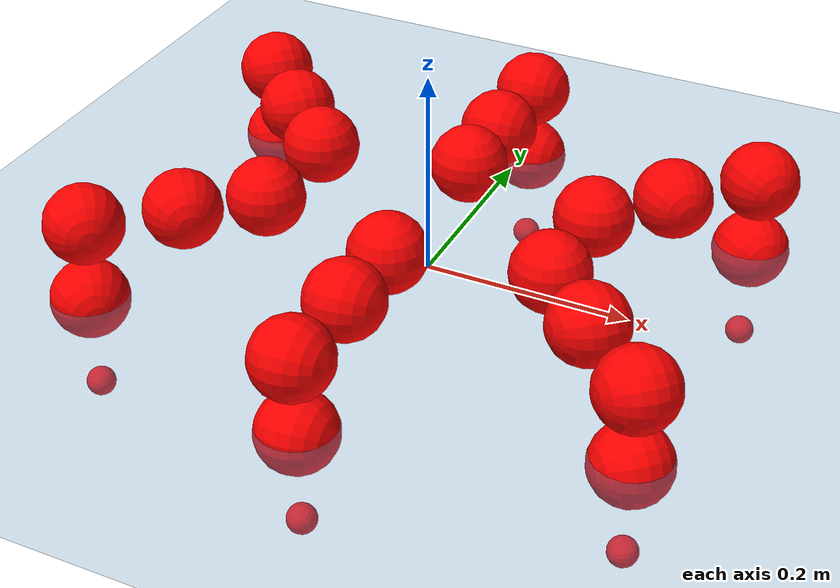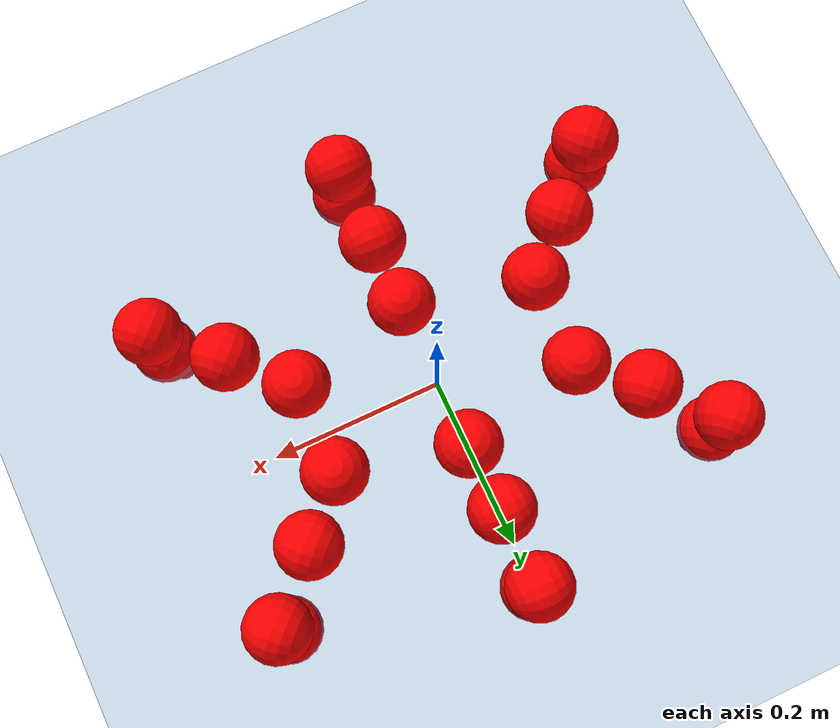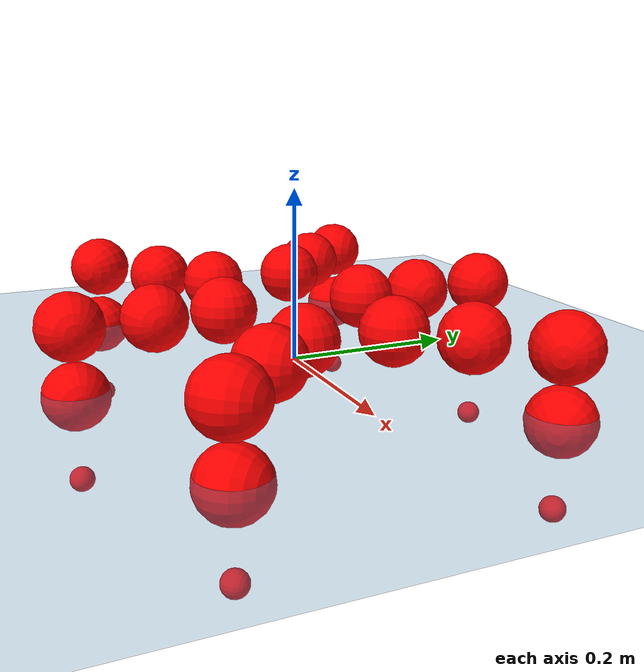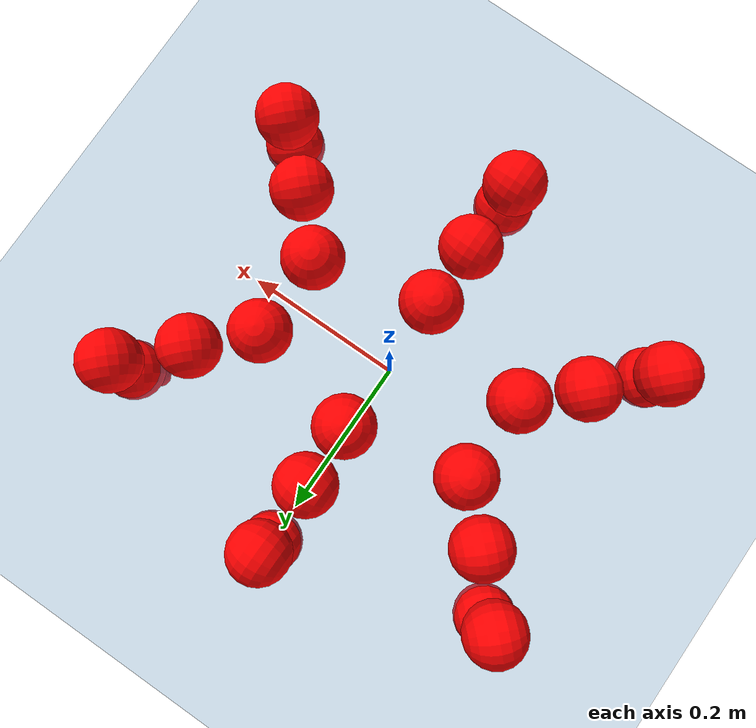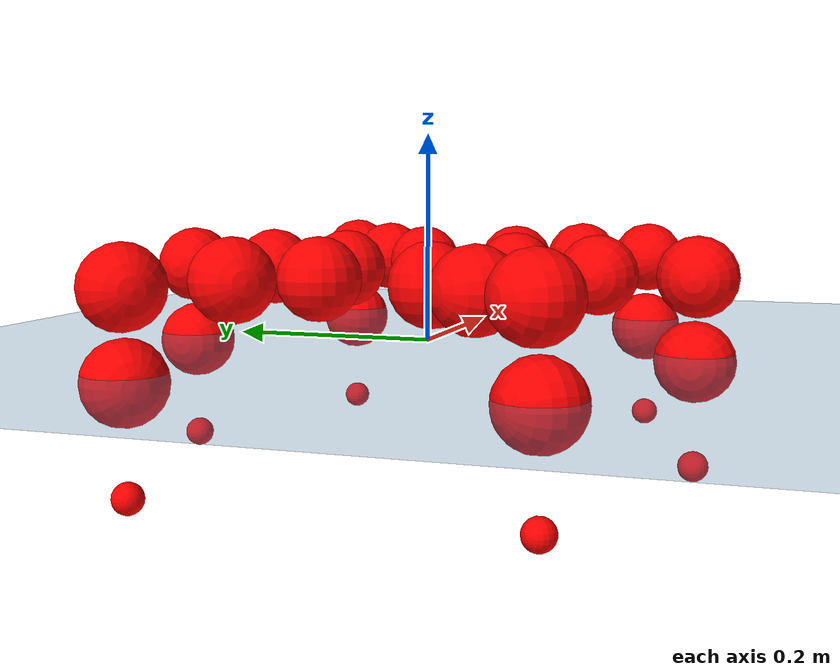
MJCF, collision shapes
<mujoco model="Golem">
  <compiler angle="radian" assetdir="assets" balanceinertia="true" inertiafromgeom="false"/>

  <option timestep="0.005" density="1.2" viscosity="2e-05"/>

  <size nkey="1"/>

  <visual>
    <quality shadowsize="8192"/>
    <map shadowclip="0.5"/>
  </visual>

  <default>
    <default class="/">
      <joint armature="0.01" damping="0.01" frictionloss="0.01"/>
      <geom contype="0" conaffinity="0" group="1" solref="-1000 -80"/>
      <site size="0.01 0.005 0.005" group="5"/>
      <general forcelimited="true" biastype="affine" gainprm="25" biasprm="0 -25 -0.5"/>
      <default class="visual">
        <geom type="mesh" group="2"/>
      </default>
      <default class="collision">
        <geom group="3"/>
      </default>
      <default class="foot">
        <geom size="0.01 0 0" condim="6" group="4" priority="1" solimp="0.015 1 0.01"/>
      </default>
      <default class="reward_collision_sphere">
        <geom group="5" rgba="1 0 0 1"/>
      </default>
    </default>
  </default>

  <asset>
    <texture type="skybox" colorspace="auto" name="//unnamed_texture_0" builtin="gradient" rgb1="0.95 0.95 0.95" rgb2="0.95 0.95 0.95" width="100" height="600"/>
    <texture type="2d" colorspace="auto" name="texplane" builtin="checker" rgb1="0.345 0.575 0.748" rgb2="0.345 0.575 0.748" markrgb="1 1 1" width="512" height="512"/>
    <material name="MatPlane" class="/" texture="texplane" texuniform="true" texrepeat="2 2" specular="0.9"/>
    <mesh name="body" class="/" file="body.stl" scale="0.001 0.001 0.001"/>
    <mesh name="coxa" class="/" file="coxa.stl" scale="0.001 0.001 0.001"/>
    <mesh name="femur" class="/" file="femur.stl" scale="0.001 0.001 0.001"/>
    <mesh name="tibia" class="/" file="tibia.stl" scale="0.001 0.001 0.001"/>
    <mesh name="tarsus" class="/" file="tarsus.stl" scale="0.001 0.001 0.001"/>
  </asset>

  <worldbody>
    <geom name="floor" class="/" size="100 100 0.125" type="plane" group="0" material="MatPlane"/>
    <light name="toplight_shadow" class="/" pos="0 0 5" dir="0.0990148 0.0990148 -0.990148" type="directional" ambient="0.04 0.04 0.04" diffuse="0.55 0.55 0.55" specular="0.12 0.12 0.12"/>
    <light name="toplight_fill" class="/" pos="0 0 5" dir="0.0990148 0.0990148 -0.990148" type="directional" castshadow="false" ambient="0.04 0.04 0.04" diffuse="0.3 0.3 0.3" specular="0.08 0.08 0.08"/>
    <body name="trunk" pos="-1.59044e-05 0.00103776 -0.00246855" quat="0.999999 -0.00115398 0.000465562 0.000641755">
      <inertial pos="0.00142989 -0.00136197 -0.00129216" quat="0.999999 -0.000663732 -0.000263985 0.00103831" mass="2.95519" diaginertia="0.00613319 0.00430112 0.0141938"/>
      <joint name="//unnamed_joint_0" type="free"/>
      <geom name="//unnamed_geom_1" class="/" pos="0 0 0.0686396" quat="1 0 0 0" type="mesh" rgba="0.9 0.9 0.9 1" mesh="body"/>
      <site name="imu" class="/" pos="0.119748 0.0140115 0.118567" size="0.00943926"/>
      <camera name="track" class="/" pos="0 -1.70331 0" quat="0.707107 0.707107 0 0" mode="trackcom"/>
      <camera name="ego_camera" class="/" pos="0.117992 0 0.107249" quat="-0.5 -0.5 0.5 0.5"/>
      <body name="coxa_RR" pos="-0.162795 -0.0707109 0.0706688" quat="0.383063 -0.000973188 3.83319e-05 -0.923722">
        <inertial pos="0.00273229 0.000220459 -0.00181972" quat="0.999981 -0.00209194 0.00238733 -0.00521788" mass="0.174679" diaginertia="0.00619005 0.00464889 0.014588"/>
        <joint name="coxa_joint_RR" class="/" pos="0 0 0" axis="0.000131494 -0.00213131 -0.999998" range="-3.11631 3.13717" armature="0.0088158" damping="0" frictionloss="0.00976812"/>
        <geom name="//unnamed_geom_2" class="/" type="mesh" rgba="0.2 0.2 0.2 1" mesh="coxa"/>
        <geom name="//unnamed_geom_3" class="reward_collision_sphere" size="0.037757" pos="-0.0272288 0 0"/>
        <body name="femur_RR" pos="0.0515938 -0.00118253 0.00172874" quat="0.500046 -0.500575 0.498957 0.500421">
          <inertial pos="-9.46052e-05 0.0023329 0.00192991" quat="0.999928 0.00390711 -0.0025949 0.0110579" mass="0.161284" diaginertia="0.00611287 0.00424714 0.0136983"/>
          <joint name="femur_joint_RR" class="/" pos="0 0 0" axis="-0.000884701 -0.00510682 -0.999987" range="-3.13501 3.1339" armature="0.0107172" damping="0.00590125" frictionloss="0.00948104"/>
          <geom name="//unnamed_geom_4" class="/" type="mesh" rgba="0.9 0.9 0.9 1" mesh="femur"/>
          <geom name="//unnamed_geom_5" class="reward_collision_sphere" size="0.037757"/>
          <body name="tibia_RR" pos="-0.00266324 -0.0908636 7.52467e-05" quat="1.85753e-05 1 -3.39441e-05 -3.4997e-05">
            <inertial pos="-0.000533726 0.00267904 -0.000963215" quat="1 8.29132e-06 2.14212e-05 6.15295e-06" mass="0.162123" diaginertia="0.00596288 0.00430194 0.0138355"/>
            <joint name="tibia_joint_RR" class="/" pos="0 0 0" axis="-0.0130282 0.00546896 0.9999" range="-3.08795 3.12243" armature="0.00836397" damping="0.00724825" frictionloss="0.0103994"/>
            <geom name="//unnamed_geom_6" class="/" type="mesh" rgba="0.2 0.2 0.2 1" mesh="tibia"/>
            <geom name="//unnamed_geom_7" class="reward_collision_sphere" size="0.037757"/>
            <body name="tarsus_RR" pos="0.0793399 0.00297465 -0.0022783" quat="0.999999 0.000348316 -0.000798908 0.000502391">
              <inertial pos="0.0562593 0.0013801 0.00270381" quat="0.498943 0.493829 0.501939 0.50522" mass="0.162113" diaginertia="0.00587222 0.00433622 0.0140557"/>
              <joint name="tarsus_joint_RR" class="/" pos="0 0 0" axis="0.0132535 -0.00311617 0.999907" range="-3.18013 3.15354" armature="0.00931142" damping="0.012781" frictionloss="0.00894211"/>
              <geom name="//unnamed_geom_8" class="/" type="mesh" rgba="0.9 0.9 0.9 1" mesh="tarsus"/>
              <geom name="foot_1" class="foot" size="0.00846289" pos="0.101654 0 0" quat="0 -0.707107 0 0.707107"/>
              <geom name="//unnamed_geom_10" class="reward_collision_sphere" size="0.037757"/>
              <geom name="//unnamed_geom_11" class="reward_collision_sphere" size="0.0141589" pos="0.09757 0 0"/>
              <site name="foot_1" class="foot" pos="0.101654 0 0" quat="0 -0.707107 0 0.707107" size="0.00943926"/>
            </body>
          </body>
        </body>
      </body>
      <body name="coxa_RM" pos="0.00196739 -0.115489 0.071213" quat="0.706812 2.17498e-05 4.97838e-05 -0.707402">
        <inertial pos="-0.00062612 -0.000265243 -0.00265512" quat="0.999935 0.0098582 -0.00231717 -0.00523302" mass="0.169209" diaginertia="0.00630433 0.00475229 0.0150894"/>
        <joint name="coxa_joint_RM" class="/" pos="0 0 0" axis="-0.00996677 0.00095461 -0.99995" range="-3.14452 3.10035" armature="0.00956698" damping="0.00967385" frictionloss="0.0106232"/>
        <geom name="//unnamed_geom_12" class="/" type="mesh" rgba="0.2 0.2 0.2 1" mesh="coxa"/>
        <geom name="//unnamed_geom_13" class="reward_collision_sphere" size="0.037757" pos="-0.0272288 0 0"/>
        <body name="femur_RM" pos="0.0520389 -0.00120098 -0.000984132" quat="0.500161 -0.5004 0.49967 0.499769">
          <inertial pos="0.000382048 0.00255663 0.000550232" quat="0.999986 -0.00291213 0.00286275 -0.00326383" mass="0.172158" diaginertia="0.00593915 0.00445908 0.0138825"/>
          <joint name="femur_joint_RM" class="/" pos="0 0 0" axis="0.000610592 0.00107754 -0.999999" range="-3.08413 3.1729" armature="0.0107379" damping="0.0166563" frictionloss="0.0107309"/>
          <geom name="//unnamed_geom_14" class="/" type="mesh" rgba="0.9 0.9 0.9 1" mesh="femur"/>
          <geom name="//unnamed_geom_15" class="reward_collision_sphere" size="0.037757"/>
          <body name="tibia_RM" pos="-0.000323421 -0.091592 5.53266e-06" quat="0.000438409 1 -0.000476224 0.000153087">
            <inertial pos="-0.000535063 0.000136628 0.00281092" quat="0.99999 0.000119646 0.000756182 0.00435482" mass="0.173969" diaginertia="0.00615158 0.00447123 0.0138997"/>
            <joint name="tibia_joint_RM" class="/" pos="0 0 0" axis="0.00750785 0.00860319 0.999935" range="-3.11894 3.19145" armature="0.0082404" damping="0.0186323" frictionloss="0.0106755"/>
            <geom name="//unnamed_geom_16" class="/" type="mesh" rgba="0.2 0.2 0.2 1" mesh="tibia"/>
            <geom name="//unnamed_geom_17" class="reward_collision_sphere" size="0.037757"/>
            <body name="tarsus_RM" pos="0.0777809 -0.00183846 -0.000273961" quat="0.999999 -0.00112529 0.000669814 -0.000274363">
              <inertial pos="0.0549792 -0.000621611 0.000694091" quat="0.499767 0.502088 0.498955 0.499185" mass="0.17976" diaginertia="0.00639088 0.00462743 0.0147083"/>
              <joint name="tarsus_joint_RM" class="/" pos="0 0 0" axis="-0.00406606 0.000595022 0.999992" range="-3.12606 3.15472" armature="0.00876144" damping="0.0153641" frictionloss="0.00914203"/>
              <geom name="//unnamed_geom_18" class="/" type="mesh" rgba="0.9 0.9 0.9 1" mesh="tarsus"/>
              <geom name="foot_2" class="foot" size="0.00858716" pos="0.101654 0 0" quat="0 -0.707107 0 0.707107"/>
              <geom name="//unnamed_geom_20" class="reward_collision_sphere" size="0.037757"/>
              <geom name="//unnamed_geom_21" class="reward_collision_sphere" size="0.0141589" pos="0.09757 0 0"/>
              <site name="foot_2" class="foot" pos="0.101654 0 0" quat="0 -0.707107 0 0.707107" size="0.00943926"/>
            </body>
          </body>
        </body>
      </body>
      <body name="coxa_RF" pos="0.162467 -0.0727859 0.0709252" quat="0.923904 -0.00028579 7.7298e-05 -0.382625">
        <inertial pos="-0.00247684 -0.000755269 -0.00257282" quat="0.99993 0.00836857 -0.00414785 -0.00732559" mass="0.167148" diaginertia="0.00629326 0.0045275 0.0147249"/>
        <joint name="coxa_joint_RF" class="/" pos="0 0 0" axis="-0.00527552 -0.00261519 -0.999983" range="-3.15378 3.08974" armature="0.00988337" damping="0.019633" frictionloss="0.0107194"/>
        <geom name="//unnamed_geom_22" class="/" type="mesh" rgba="0.2 0.2 0.2 1" mesh="coxa"/>
        <geom name="//unnamed_geom_23" class="reward_collision_sphere" size="0.037757" pos="-0.0272288 0 0"/>
        <body name="femur_RF" pos="0.0558152 -0.00136119 0.00116301" quat="0.499568 -0.501282 0.499929 0.499219">
          <inertial pos="-0.000897748 0.000406446 0.000502568" quat="0.999951 -0.00981674 -0.00120914 -0.000370085" mass="0.168775" diaginertia="0.00601414 0.00440304 0.0137881"/>
          <joint name="femur_joint_RF" class="/" pos="0 0 0" axis="-0.00034239 0.00341574 -0.999994" range="-3.11132 3.13451" armature="0.00919673" damping="0.0103613" frictionloss="0.00895469"/>
          <geom name="//unnamed_geom_24" class="/" type="mesh" rgba="0.9 0.9 0.9 1" mesh="femur"/>
          <geom name="//unnamed_geom_25" class="reward_collision_sphere" size="0.037757"/>
          <body name="tibia_RF" pos="0.00249646 -0.0899401 0.00186189" quat="-0.000298088 1 5.06012e-05 0.000268727">
            <inertial pos="0.00069576 -0.00253186 -0.00280257" quat="0.999906 -0.00586217 0.000343895 -0.0123633" mass="0.166389" diaginertia="0.00595458 0.00440708 0.0142321"/>
            <joint name="tibia_joint_RF" class="/" pos="0 0 0" axis="0.0121551 -0.00135141 0.999925" stiffness="0.0103855" range="-3.1731 3.13607" armature="0.00941427" damping="0.0149431" frictionloss="0.00837792"/>
            <geom name="//unnamed_geom_26" class="/" type="mesh" rgba="0.2 0.2 0.2 1" mesh="tibia"/>
            <geom name="//unnamed_geom_27" class="reward_collision_sphere" size="0.037757"/>
            <body name="tarsus_RF" pos="0.0788431 -0.00149641 -0.00152802" quat="1 4.14206e-05 2.98232e-05 -2.15687e-05">
              <inertial pos="0.0540039 -0.000888317 0.000939377" quat="0.498102 0.499855 0.502183 0.499851" mass="0.1643" diaginertia="0.0059318 0.00424121 0.013734"/>
              <joint name="tarsus_joint_RF" class="/" pos="0 0 0" axis="-0.00223564 0.0130862 0.999912" stiffness="0.00356786" range="-3.11946 3.15483" armature="0.00940436" damping="0" frictionloss="0.0104275"/>
              <geom name="//unnamed_geom_28" class="/" type="mesh" rgba="0.9 0.9 0.9 1" mesh="tarsus"/>
              <geom name="foot_3" class="foot" size="0.0097719" pos="0.101654 0 0" quat="0 -0.707107 0 0.707107"/>
              <geom name="//unnamed_geom_30" class="reward_collision_sphere" size="0.037757"/>
              <geom name="//unnamed_geom_31" class="reward_collision_sphere" size="0.0141589" pos="0.09757 0 0"/>
              <site name="foot_3" class="foot" pos="0.101654 0 0" quat="0 -0.707107 0 0.707107" size="0.00943926"/>
            </body>
          </body>
        </body>
      </body>
      <body name="coxa_LR" pos="-0.160967 0.0719253 0.0727317" quat="0.382482 -9.30554e-05 0.00146266 0.923962">
        <inertial pos="-0.00158456 0.00258825 -0.00251273" quat="0.999991 0.00419636 -0.000111699 0.000645546" mass="0.166981" diaginertia="0.00607528 0.0042864 0.0140174"/>
        <joint name="coxa_joint_LR" class="/" pos="0 0 0" axis="-0.0165344 0.00395497 -0.999855" stiffness="0.00654841" range="-3.16726 3.19325" armature="0.00933989" damping="0.0154421" frictionloss="0.0107045"/>
        <geom name="//unnamed_geom_32" class="/" type="mesh" rgba="0.2 0.2 0.2 1" mesh="coxa"/>
        <geom name="//unnamed_geom_33" class="reward_collision_sphere" size="0.037757" pos="-0.0272288 0 0"/>
        <body name="femur_LR" pos="0.0527699 0.00133161 0.00220551" quat="0.499803 -0.499839 0.500247 0.500111">
          <inertial pos="-0.00114525 0.00260533 0.000311114" quat="0.99992 0.00613197 0.0110082 0.00079328" mass="0.166275" diaginertia="0.0064151 0.00450481 0.0138443"/>
          <joint name="femur_joint_LR" class="/" pos="0 0 0" axis="0.00680977 0.00762866 0.999948" range="-3.17206 3.15628" armature="0.010373" damping="0.00539082" frictionloss="0.00965022"/>
          <geom name="//unnamed_geom_34" class="/" type="mesh" rgba="0.9 0.9 0.9 1" mesh="femur"/>
          <geom name="//unnamed_geom_35" class="reward_collision_sphere" size="0.037757"/>
          <body name="tibia_LR" pos="0.00166898 -0.0925393 -0.0034021" quat="0.000128351 1 -0.000130651 -0.000208699">
            <inertial pos="-0.00190055 0.000503922 0.00290003" quat="0.999914 -0.00647615 0.00977113 -0.00583209" mass="0.17253" diaginertia="0.0060422 0.00452421 0.0138852"/>
            <joint name="tibia_joint_LR" class="/" pos="0 0 0" axis="-0.00147913 -0.00329574 -0.999993" range="-3.08997 3.19307" armature="0.00802146" damping="0" frictionloss="0.00938115"/>
            <geom name="//unnamed_geom_36" class="/" type="mesh" rgba="0.2 0.2 0.2 1" mesh="tibia"/>
            <geom name="//unnamed_geom_37" class="reward_collision_sphere" size="0.037757"/>
            <body name="tarsus_LR" pos="0.0795144 -0.000757264 0.00172931" quat="1 -8.93782e-06 -9.09195e-06 -3.33792e-05">
              <inertial pos="0.0545706 -0.0025788 -0.000952048" quat="0.500079 0.49951 0.499534 0.500876" mass="0.16183" diaginertia="0.00612309 0.00457444 0.0144657"/>
              <joint name="tarsus_joint_LR" class="/" pos="0 0 0" axis="0.0013733 0.000549617 -0.999999" stiffness="0.00116071" range="-3.1255 3.18589" armature="0.00951794" damping="0.00382603" frictionloss="0.008383"/>
              <geom name="//unnamed_geom_38" class="/" type="mesh" rgba="0.9 0.9 0.9 1" mesh="tarsus"/>
              <geom name="foot_4" class="foot" size="0.0102656" pos="0.101654 0 0" quat="0.707107 0 -0.707107 0"/>
              <geom name="//unnamed_geom_40" class="reward_collision_sphere" size="0.037757"/>
              <geom name="//unnamed_geom_41" class="reward_collision_sphere" size="0.0141589" pos="0.09757 0 0"/>
              <site name="foot_4" class="foot" pos="0.101654 0 0" quat="0.707107 0 -0.707107 0" size="0.00943926"/>
            </body>
          </body>
        </body>
      </body>
      <body name="coxa_LM" pos="0.0028843 0.111563 0.0711385" quat="0.707113 0.000254628 0.000307632 0.707101">
        <inertial pos="0.00068544 0.000124865 -0.00229489" quat="0.999989 -0.0024547 -0.00178004 0.00370323" mass="0.165772" diaginertia="0.00625836 0.00444113 0.0141932"/>
        <joint name="coxa_joint_LM" class="/" pos="0 0 0" axis="0.0032586 -0.0106356 -0.999938" range="-3.12007 3.13866" armature="0.00963483" damping="0.00345762" frictionloss="0.00943705"/>
        <geom name="//unnamed_geom_42" class="/" type="mesh" rgba="0.2 0.2 0.2 1" mesh="coxa"/>
        <geom name="//unnamed_geom_43" class="reward_collision_sphere" size="0.037757" pos="-0.0272288 0 0"/>
        <body name="femur_LM" pos="0.050707 0.00208743 0.000124803" quat="0.49999 -0.499977 0.499571 0.500461">
          <inertial pos="-0.00264095 -0.000375777 -0.00224165" quat="0.999906 -0.00261588 0.00912135 0.00986565" mass="0.163043" diaginertia="0.0060413 0.00433973 0.0139565"/>
          <joint name="femur_joint_LM" class="/" pos="0 0 0" axis="0.00158622 0.00756632 0.99997" stiffness="0.00210085" range="-3.14899 3.09294" armature="0.00844855" damping="0" frictionloss="0.00811596"/>
          <geom name="//unnamed_geom_44" class="/" type="mesh" rgba="0.9 0.9 0.9 1" mesh="femur"/>
          <geom name="//unnamed_geom_45" class="reward_collision_sphere" size="0.037757"/>
          <body name="tibia_LM" pos="-0.000515346 -0.0895207 1.05765e-05" quat="-0.000244924 1 -0.000660626 0.000545538">
            <inertial pos="0.00146161 3.01983e-06 5.88409e-05" quat="0.999987 0.000712506 0.00162064 0.00478372" mass="0.168175" diaginertia="0.0060115 0.00435782 0.0138275"/>
            <joint name="tibia_joint_LM" class="/" pos="0 0 0" axis="-0.0106616 0.0105932 -0.999887" range="-3.08423 3.10193" armature="0.0102753" damping="0" frictionloss="0.0107609"/>
            <geom name="//unnamed_geom_46" class="/" type="mesh" rgba="0.2 0.2 0.2 1" mesh="tibia"/>
            <geom name="//unnamed_geom_47" class="reward_collision_sphere" size="0.037757"/>
            <body name="tarsus_LM" pos="0.0781038 -0.00129795 -7.57108e-05" quat="1 -0.000102134 5.12341e-05 -0.000139725">
              <inertial pos="0.0529056 -0.0023751 0.000652302" quat="0.49928 0.5057 0.493143 0.501794" mass="0.162958" diaginertia="0.0060248 0.00426099 0.0137237"/>
              <joint name="tarsus_joint_LM" class="/" pos="0 0 0" axis="0.00453383 0.0101959 -0.999938" stiffness="0.0126954" range="-3.14445 3.14395" armature="0.00973865" damping="0.0207242" frictionloss="0.0105444"/>
              <geom name="//unnamed_geom_48" class="/" type="mesh" rgba="0.9 0.9 0.9 1" mesh="tarsus"/>
              <geom name="foot_5" class="foot" size="0.0103365" pos="0.101654 0 0" quat="0.707107 0 -0.707107 0"/>
              <geom name="//unnamed_geom_50" class="reward_collision_sphere" size="0.037757"/>
              <geom name="//unnamed_geom_51" class="reward_collision_sphere" size="0.0141589" pos="0.09757 0 0"/>
              <site name="foot_5" class="foot" pos="0.101654 0 0" quat="0.707107 0 -0.707107 0" size="0.00943926"/>
            </body>
          </body>
        </body>
      </body>
      <body name="coxa_LF" pos="0.163551 0.0689239 0.0689951" quat="0.923887 0.000160502 1.27913e-05 0.382667">
        <inertial pos="-0.00245209 -0.0020302 -0.00252397" quat="1 9.28944e-06 1.06143e-05 -2.79007e-06" mass="0.161355" diaginertia="0.00594664 0.00420621 0.0141685"/>
        <joint name="coxa_joint_LF" class="/" pos="0 0 0" axis="0.00502431 -0.00842918 -0.999952" range="-3.18164 3.13888" armature="0.00975062" damping="0.00968769" frictionloss="0.00814082"/>
        <geom name="//unnamed_geom_52" class="/" type="mesh" rgba="0.2 0.2 0.2 1" mesh="coxa"/>
        <geom name="//unnamed_geom_53" class="reward_collision_sphere" size="0.037757" pos="-0.0272288 0 0"/>
        <body name="femur_LF" pos="0.0552804 0.00264497 0.00106066" quat="0.49943 -0.500873 0.500289 0.499406">
          <inertial pos="-0.000423027 -0.00236986 -5.8775e-05" quat="1 0.000726218 0.000510182 0.000452927" mass="0.162679" diaginertia="0.00576193 0.00432835 0.0137127"/>
          <joint name="femur_joint_LF" class="/" pos="0 0 0" axis="0.0102281 0.0111135 0.999886" range="-3.1717 3.19488" armature="0.00903993" damping="0.0059235" frictionloss="0.00922616"/>
          <geom name="//unnamed_geom_54" class="/" type="mesh" rgba="0.9 0.9 0.9 1" mesh="femur"/>
          <geom name="//unnamed_geom_55" class="reward_collision_sphere" size="0.037757"/>
          <body name="tibia_LF" pos="-0.000339643 -0.0915578 0.000247502" quat="0.000535784 1 0.000835851 -0.000116602">
            <inertial pos="0.00221419 0.0028534 -0.00182936" quat="0.999996 -0.00106169 -0.00223387 -0.00157607" mass="0.174258" diaginertia="0.0059958 0.00450064 0.013875"/>
            <joint name="tibia_joint_LF" class="/" pos="0 0 0" axis="-0.00100442 -0.0114248 -0.999934" range="-3.15132 3.08344" armature="0.00907481" damping="0.00781208" frictionloss="0.00934839"/>
            <geom name="//unnamed_geom_56" class="/" type="mesh" rgba="0.2 0.2 0.2 1" mesh="tibia"/>
            <geom name="//unnamed_geom_57" class="reward_collision_sphere" size="0.037757"/>
            <body name="tarsus_LF" pos="0.0788793 0.000773732 -0.00316326" quat="1 -2.64177e-05 4.11962e-05 4.37401e-05">
              <inertial pos="0.0533744 3.54548e-05 0.000350033" quat="0.502844 0.505596 0.498964 0.492499" mass="0.166597" diaginertia="0.00613804 0.00451587 0.0144162"/>
              <joint name="tarsus_joint_LF" class="/" pos="0 0 0" axis="0.00142981 -0.00723309 -0.999973" stiffness="0.0289328" range="-3.10766 3.08591" armature="0.0091656" damping="0.0364878" frictionloss="0.00873791"/>
              <geom name="//unnamed_geom_58" class="/" type="mesh" rgba="0.9 0.9 0.9 1" mesh="tarsus"/>
              <geom name="foot_6" class="foot" size="0.00942295" pos="0.101654 0 0" quat="0.707107 0 -0.707107 0"/>
              <geom name="//unnamed_geom_60" class="reward_collision_sphere" size="0.037757"/>
              <geom name="//unnamed_geom_61" class="reward_collision_sphere" size="0.0141589" pos="0.09757 0 0"/>
              <site name="foot_6" class="foot" pos="0.101654 0 0" quat="0.707107 0 -0.707107 0" size="0.00943926"/>
            </body>
          </body>
        </body>
      </body>
    </body>
  </worldbody>

  <contact>
    <pair class="/" geom1="floor" geom2="foot_1" name="//unnamed_contact_0"/>
    <pair class="/" geom1="floor" geom2="foot_2" name="//unnamed_contact_1"/>
    <pair class="/" geom1="floor" geom2="foot_3" name="//unnamed_contact_2"/>
    <pair class="/" geom1="floor" geom2="foot_4" name="//unnamed_contact_3"/>
    <pair class="/" geom1="floor" geom2="foot_5" name="//unnamed_contact_4"/>
    <pair class="/" geom1="floor" geom2="foot_6" name="//unnamed_contact_5"/>
  </contact>

  <actuator>
    <general name="coxa_joint_RR" class="/" joint="coxa_joint_RR" forcerange="-6.91489 6.91489" gainprm="22.8075" biasprm="0 -22.8075 -0.498743"/>
    <general name="femur_joint_RR" class="/" joint="femur_joint_RR" forcerange="-6.82876 6.82876" gainprm="22.8075" biasprm="0 -22.8075 -0.498743"/>
    <general name="tibia_joint_RR" class="/" joint="tibia_joint_RR" forcerange="-6.86675 6.86675" gainprm="22.8075" biasprm="0 -22.8075 -0.498743"/>
    <general name="tarsus_joint_RR" class="/" joint="tarsus_joint_RR" forcerange="-7.616 7.616" gainprm="22.8075" biasprm="0 -22.8075 -0.498743"/>
    <general name="coxa_joint_RM" class="/" joint="coxa_joint_RM" forcerange="-6.66168 6.66168" gainprm="22.8075" biasprm="0 -22.8075 -0.498743"/>
    <general name="femur_joint_RM" class="/" joint="femur_joint_RM" forcerange="-7.61479 7.61479" gainprm="22.8075" biasprm="0 -22.8075 -0.498743"/>
    <general name="tibia_joint_RM" class="/" joint="tibia_joint_RM" forcerange="-6.88607 6.88607" gainprm="22.8075" biasprm="0 -22.8075 -0.498743"/>
    <general name="tarsus_joint_RM" class="/" joint="tarsus_joint_RM" forcerange="-7.19376 7.19376" gainprm="22.8075" biasprm="0 -22.8075 -0.498743"/>
    <general name="coxa_joint_RF" class="/" joint="coxa_joint_RF" forcerange="-6.16683 6.16683" gainprm="22.8075" biasprm="0 -22.8075 -0.498743"/>
    <general name="femur_joint_RF" class="/" joint="femur_joint_RF" forcerange="-6.61294 6.61294" gainprm="22.8075" biasprm="0 -22.8075 -0.498743"/>
    <general name="tibia_joint_RF" class="/" joint="tibia_joint_RF" forcerange="-7.02957 7.02957" gainprm="22.8075" biasprm="0 -22.8075 -0.498743"/>
    <general name="tarsus_joint_RF" class="/" joint="tarsus_joint_RF" forcerange="-6.61848 6.61848" gainprm="22.8075" biasprm="0 -22.8075 -0.498743"/>
    <general name="coxa_joint_LR" class="/" joint="coxa_joint_LR" forcerange="-6.99606 6.99606" gainprm="22.8075" biasprm="0 -22.8075 -0.498743"/>
    <general name="femur_joint_LR" class="/" joint="femur_joint_LR" forcerange="-6.83926 6.83926" gainprm="22.8075" biasprm="0 -22.8075 -0.498743"/>
    <general name="tibia_joint_LR" class="/" joint="tibia_joint_LR" forcerange="-7.11825 7.11825" gainprm="22.8075" biasprm="0 -22.8075 -0.498743"/>
    <general name="tarsus_joint_LR" class="/" joint="tarsus_joint_LR" forcerange="-6.86318 6.86318" gainprm="22.8075" biasprm="0 -22.8075 -0.498743"/>
    <general name="coxa_joint_LM" class="/" joint="coxa_joint_LM" forcerange="-7.08563 7.08563" gainprm="22.8075" biasprm="0 -22.8075 -0.498743"/>
    <general name="femur_joint_LM" class="/" joint="femur_joint_LM" forcerange="-7.13075 7.13075" gainprm="22.8075" biasprm="0 -22.8075 -0.498743"/>
    <general name="tibia_joint_LM" class="/" joint="tibia_joint_LM" forcerange="-6.88352 6.88352" gainprm="22.8075" biasprm="0 -22.8075 -0.498743"/>
    <general name="tarsus_joint_LM" class="/" joint="tarsus_joint_LM" forcerange="-7.15136 7.15136" gainprm="22.8075" biasprm="0 -22.8075 -0.498743"/>
    <general name="coxa_joint_LF" class="/" joint="coxa_joint_LF" forcerange="-6.40422 6.40422" gainprm="22.8075" biasprm="0 -22.8075 -0.498743"/>
    <general name="femur_joint_LF" class="/" joint="femur_joint_LF" forcerange="-6.83374 6.83374" gainprm="22.8075" biasprm="0 -22.8075 -0.498743"/>
    <general name="tibia_joint_LF" class="/" joint="tibia_joint_LF" forcerange="-6.94887 6.94887" gainprm="22.8075" biasprm="0 -22.8075 -0.498743"/>
    <general name="tarsus_joint_LF" class="/" joint="tarsus_joint_LF" forcerange="-6.8207 6.8207" gainprm="22.8075" biasprm="0 -22.8075 -0.498743"/>
  </actuator>

  <sensor>
    <gyro site="imu" name="imu_angular_velocity"/>
    <velocimeter site="imu" name="imu_linear_velocity"/>
    <framelinvel objtype="site" objname="foot_1" name="foot_1_global_linear_velocity"/>
    <framelinvel objtype="site" objname="foot_2" name="foot_2_global_linear_velocity"/>
    <framelinvel objtype="site" objname="foot_3" name="foot_3_global_linear_velocity"/>
    <framelinvel objtype="site" objname="foot_4" name="foot_4_global_linear_velocity"/>
    <framelinvel objtype="site" objname="foot_5" name="foot_5_global_linear_velocity"/>
    <framelinvel objtype="site" objname="foot_6" name="foot_6_global_linear_velocity"/>
  </sensor>

  <keyframe>
    <key name="home" qpos="0 0 0.1457 1 0 0 0 0 0 0 0 0 0 0 0 0 0 0 0 0 0 0 0 0 0 0 0 0 0 0 0"/>
  </keyframe>
</mujoco>
